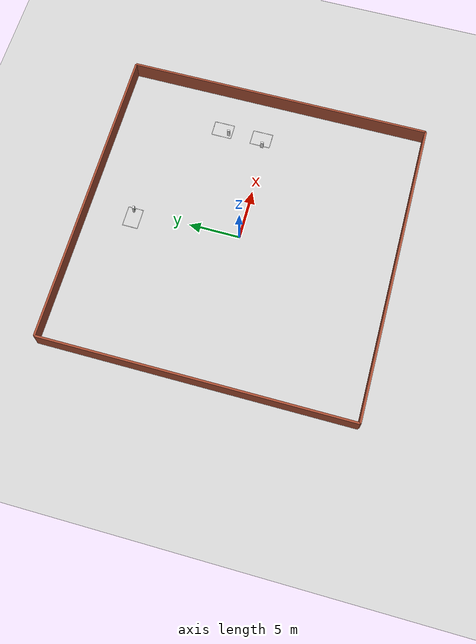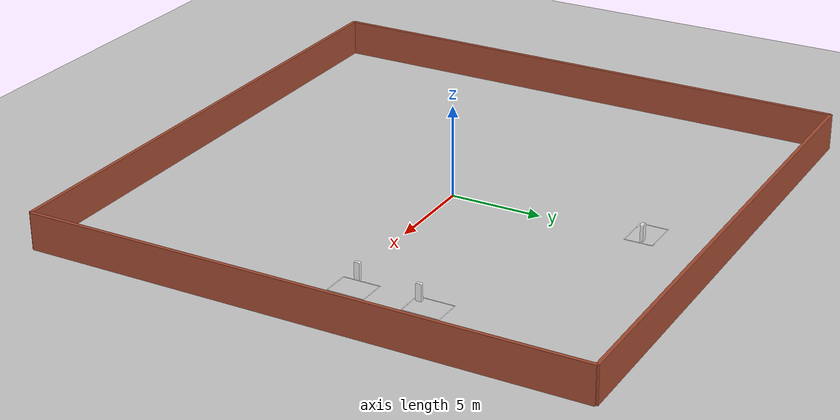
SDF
<sdf version="1.7">
 <world name="default">
  <light name="sun" type="directional">
   <pose>0 0 10 0 -0 0</pose>
   <diffuse>0.8 0.8 0.8 1</diffuse>
   <specular>0.2 0.2 0.2 1</specular>
   <attenuation>
    <range>1000</range>
    <constant>0.9</constant>
    <linear>0.01</linear>
    <quadratic>0.001</quadratic>
   </attenuation>
   <direction>-0.5 0.1 -0.9</direction>
   <spot><inner_angle>0</inner_angle><outer_angle>0</outer_angle><falloff>0</falloff></spot>
  </light>
  <model name="ground_plane">
   <static>1</static>
   <link name="link">
    <collision name="collision">
     <geometry><plane><normal>0 0 1</normal><size>100 100</size></plane></geometry>
     <surface><friction><ode><mu>100</mu><mu2>50</mu2></ode></friction></surface>
    </collision>
    <visual name="visual">
     <cast_shadows>0</cast_shadows>
     <geometry><plane><normal>0 0 1</normal><size>100 100</size></plane></geometry>
     <material>
      <script><uri>file://media/materials/scripts/gazebo.material</uri><name>Gazebo/Grey</name></script>
     </material>
    </visual>
   </link>
  </model>
  <gravity>0 0 -9.8</gravity>
  <magnetic_field>6e-06 2.3e-05 -4.2e-05</magnetic_field>
  <atmosphere type="adiabatic"/>
  <physics type="ode">
   <max_step_size>0.001</max_step_size>
   <real_time_factor>1</real_time_factor>
   <real_time_update_rate>1000</real_time_update_rate>
  </physics>
  <scene><ambient>0.4 0.4 0.4 1</ambient><background>0.7 0.7 0.7 1</background><shadows>1</shadows></scene>
  <audio><device>default</device></audio>
  <spherical_coordinates>
   <surface_model>EARTH_WGS84</surface_model>
   <latitude_deg>0</latitude_deg>
   <longitude_deg>0</longitude_deg>
   <elevation>0</elevation>
   <heading_deg>0</heading_deg>
  </spherical_coordinates>
  <model name="parking_slot_1">
   <static>1</static>
   <pose>11 0.7 0 0 -0 1.57</pose>
   <link name="lines">
    <visual name="front_line">
     <pose>1 0 0.001 0 -0 0</pose>
     <geometry><box><size>0.05 1.5 0.002</size></box></geometry>
     <material>
      <script><uri>file://media/materials/scripts/gazebo.material</uri><name>Gazebo/White</name></script>
     </material>
    </visual>
    <visual name="back_line">
     <pose>-1 0 0.001 0 -0 0</pose>
     <geometry><box><size>0.05 1.5 0.002</size></box></geometry>
     <material>
      <script><uri>file://media/materials/scripts/gazebo.material</uri><name>Gazebo/White</name></script>
     </material>
    </visual>
    <visual name="left_line">
     <pose>0 0.75 0.001 0 -0 0</pose>
     <geometry><box><size>2 0.05 0.002</size></box></geometry>
     <material>
      <script><uri>file://media/materials/scripts/gazebo.material</uri><name>Gazebo/White</name></script>
     </material>
    </visual>
    <visual name="right_line">
     <pose>0 -0.75 0.001 0 -0 0</pose>
     <geometry><box><size>2 0.05 0.002</size></box></geometry>
     <material>
      <script><uri>file://media/materials/scripts/gazebo.material</uri><name>Gazebo/White</name></script>
     </material>
    </visual>
   </link>
  </model>
  <model name="parking_slot_2">
   <static>1</static>
   <pose>11 4.7 0 0 -0 1.57</pose>
   <link name="lines">
    <visual name="front_line">
     <pose>1 0 0.001 0 -0 0</pose>
     <geometry><box><size>0.05 1.5 0.002</size></box></geometry>
     <material>
      <script><uri>file://media/materials/scripts/gazebo.material</uri><name>Gazebo/White</name></script>
     </material>
    </visual>
    <visual name="back_line">
     <pose>-1 0 0.001 0 -0 0</pose>
     <geometry><box><size>0.05 1.5 0.002</size></box></geometry>
     <material>
      <script><uri>file://media/materials/scripts/gazebo.material</uri><name>Gazebo/White</name></script>
     </material>
    </visual>
    <visual name="left_line">
     <pose>0 0.75 0.001 0 -0 0</pose>
     <geometry><box><size>2 0.05 0.002</size></box></geometry>
     <material>
      <script><uri>file://media/materials/scripts/gazebo.material</uri><name>Gazebo/White</name></script>
     </material>
    </visual>
    <visual name="right_line">
     <pose>0 -0.75 0.001 0 -0 0</pose>
     <geometry><box><size>2 0.05 0.002</size></box></geometry>
     <material>
      <script><uri>file://media/materials/scripts/gazebo.material</uri><name>Gazebo/White</name></script>
     </material>
    </visual>
   </link>
  </model>
  <model name="parking_slot_3">
   <static>1</static>
   <pose>-0.7 10.5 0 0 -0 0</pose>
   <link name="lines">
    <visual name="front_line">
     <pose>1 0 0.001 0 -0 0</pose>
     <geometry><box><size>0.05 1.5 0.002</size></box></geometry>
     <material>
      <script><uri>file://media/materials/scripts/gazebo.material</uri><name>Gazebo/White</name></script>
     </material>
    </visual>
    <visual name="back_line">
     <pose>-1 0 0.001 0 -0 0</pose>
     <geometry><box><size>0.05 1.5 0.002</size></box></geometry>
     <material>
      <script><uri>file://media/materials/scripts/gazebo.material</uri><name>Gazebo/White</name></script>
     </material>
    </visual>
    <visual name="left_line">
     <pose>0 0.75 0.001 0 -0 0</pose>
     <geometry><box><size>2 0.05 0.002</size></box></geometry>
     <material>
      <script><uri>file://media/materials/scripts/gazebo.material</uri><name>Gazebo/White</name></script>
     </material>
    </visual>
    <visual name="right_line">
     <pose>0 -0.75 0.001 0 -0 0</pose>
     <geometry><box><size>2 0.05 0.002</size></box></geometry>
     <material>
      <script><uri>file://media/materials/scripts/gazebo.material</uri><name>Gazebo/White</name></script>
     </material>
    </visual>
   </link>
  </model>
  <model name="room_walls">
   <static>1</static>
   <link name="wall_front">
    <pose>15 0 1 0 -0 0</pose>
    <collision name="collision"><geometry><box><size>0.2 30 2</size></box></geometry></collision>
    <visual name="visual">
     <geometry><box><size>0.2 30 2</size></box></geometry>
     <material>
      <script><uri>file://media/materials/scripts/gazebo.material</uri><name>Gazebo/Bricks</name></script>
     </material>
    </visual>
   </link>
   <link name="wall_back">
    <pose>-15 0 1 0 -0 0</pose>
    <collision name="collision"><geometry><box><size>0.2 30 2</size></box></geometry></collision>
    <visual name="visual">
     <geometry><box><size>0.2 30 2</size></box></geometry>
     <material>
      <script><uri>file://media/materials/scripts/gazebo.material</uri><name>Gazebo/Bricks</name></script>
     </material>
    </visual>
   </link>
   <link name="wall_left">
    <pose>0 15 1 0 -0 0</pose>
    <collision name="collision"><geometry><box><size>30 0.2 2</size></box></geometry></collision>
    <visual name="visual">
     <geometry><box><size>30 0.2 2</size></box></geometry>
     <material>
      <script><uri>file://media/materials/scripts/gazebo.material</uri><name>Gazebo/Bricks</name></script>
     </material>
    </visual>
   </link>
   <link name="wall_right">
    <pose>0 -15 1 0 -0 0</pose>
    <collision name="collision"><geometry><box><size>30 0.2 2</size></box></geometry></collision>
    <visual name="visual">
     <geometry><box><size>30 0.2 2</size></box></geometry>
     <material>
      <script><uri>file://media/materials/scripts/gazebo.material</uri><name>Gazebo/Bricks</name></script>
     </material>
    </visual>
   </link>
  </model>
  <model name="tram_sac_VF3">
   <static>1</static>
   <link name="body_link">
    <visual name="visual_tru">
     <geometry>
      <mesh><uri>model://tram_sac_VF/meshes/tru.stl</uri><scale>0.001 0.001 0.001</scale></mesh>
     </geometry>
     <material>
      <script><uri>file://media/materials/scripts/gazebo.material</uri><name>Gazebo/White</name></script>
     </material>
    </visual>
    <visual name="visual_cong_sac">
     <pose>0 0.005 0 0 -0 0</pose>
     <geometry>
      <mesh><uri>model://tram_sac_VF/meshes/cong_sac.stl</uri><scale>0.001 0.001 0.001</scale></mesh>
     </geometry>
     <material>
      <script><uri>file://media/materials/scripts/gazebo.material</uri><name>Gazebo/Black</name></script>
     </material>
    </visual>
    <visual name="visual_icon">
     <geometry>
      <mesh><uri>model://tram_sac_VF/meshes/icon.stl</uri><scale>0.001 0.001 0.001</scale></mesh>
     </geometry>
     <material>
      <script><uri>file://media/materials/scripts/gazebo.material</uri><name>Gazebo/Green</name></script>
     </material>
    </visual>
    <collision name="collision_tru">
     <pose>0 0.1 0.45 0 -0 0</pose>
     <geometry><box><size>0.32 0.15 0.92</size></box></geometry>
    </collision>
    <collision name="collision_cong_sac">
     <pose>0 0.005 0 0 -0 0</pose>
     <geometry>
      <mesh><uri>model://tram_sac_VF/meshes/tramsac.stl</uri><scale>0.001 0.001 0.001</scale></mesh>
     </geometry>
     <surface><friction><ode><mu>1</mu><mu2>1</mu2></ode></friction></surface>
    </collision>
   </link>
   <pose>0 10.5 0 0 -0 0</pose>
  </model>
  <model name="tram_sac_VF1">
   <static>1</static>
   <link name="body_link">
    <visual name="visual_tru">
     <geometry>
      <mesh><uri>model://tram_sac_VF/meshes/tru.stl</uri><scale>0.001 0.001 0.001</scale></mesh>
     </geometry>
     <material>
      <script><uri>file://media/materials/scripts/gazebo.material</uri><name>Gazebo/White</name></script>
     </material>
    </visual>
    <visual name="visual_cong_sac">
     <pose>0 0.005 0 0 -0 0</pose>
     <geometry>
      <mesh><uri>model://tram_sac_VF/meshes/cong_sac.stl</uri><scale>0.001 0.001 0.001</scale></mesh>
     </geometry>
     <material>
      <script><uri>file://media/materials/scripts/gazebo.material</uri><name>Gazebo/Black</name></script>
     </material>
    </visual>
    <visual name="visual_icon">
     <geometry>
      <mesh><uri>model://tram_sac_VF/meshes/icon.stl</uri><scale>0.001 0.001 0.001</scale></mesh>
     </geometry>
     <material>
      <script><uri>file://media/materials/scripts/gazebo.material</uri><name>Gazebo/Green</name></script>
     </material>
    </visual>
    <collision name="collision_tru">
     <pose>0 0.1 0.45 0 -0 0</pose>
     <geometry><box><size>0.32 0.15 0.92</size></box></geometry>
    </collision>
    <collision name="collision_cong_sac">
     <pose>0 0.005 0 0 -0 0</pose>
     <geometry>
      <mesh><uri>model://tram_sac_VF/meshes/tramsac.stl</uri><scale>0.001 0.001 0.001</scale></mesh>
     </geometry>
     <surface><friction><ode><mu>1</mu><mu2>1</mu2></ode></friction></surface>
    </collision>
   </link>
   <pose>10.0588 0.417226 0 0 0 -1.57</pose>
  </model>
  <model name="tram_sac_VF2">
   <static>1</static>
   <link name="body_link">
    <visual name="visual_tru">
     <geometry>
      <mesh><uri>model://tram_sac_VF/meshes/tru.stl</uri><scale>0.001 0.001 0.001</scale></mesh>
     </geometry>
     <material>
      <script><uri>file://media/materials/scripts/gazebo.material</uri><name>Gazebo/White</name></script>
     </material>
    </visual>
    <visual name="visual_cong_sac">
     <pose>0 0.005 0 0 -0 0</pose>
     <geometry>
      <mesh><uri>model://tram_sac_VF/meshes/cong_sac.stl</uri><scale>0.001 0.001 0.001</scale></mesh>
     </geometry>
     <material>
      <script><uri>file://media/materials/scripts/gazebo.material</uri><name>Gazebo/Black</name></script>
     </material>
    </visual>
    <visual name="visual_icon">
     <geometry>
      <mesh><uri>model://tram_sac_VF/meshes/icon.stl</uri><scale>0.001 0.001 0.001</scale></mesh>
     </geometry>
     <material>
      <script><uri>file://media/materials/scripts/gazebo.material</uri><name>Gazebo/Green</name></script>
     </material>
    </visual>
    <collision name="collision_tru">
     <pose>0 0.1 0.45 0 -0 0</pose>
     <geometry><box><size>0.32 0.15 0.92</size></box></geometry>
    </collision>
    <collision name="collision_cong_sac">
     <pose>0 0.005 0 0 -0 0</pose>
     <geometry>
      <mesh><uri>model://tram_sac_VF/meshes/tramsac.stl</uri><scale>0.001 0.001 0.001</scale></mesh>
     </geometry>
     <surface><friction><ode><mu>1</mu><mu2>1</mu2></ode></friction></surface>
    </collision>
   </link>
   <pose>10.5 4 0 0 0 -1.57</pose>
  </model>
 </world>
</sdf>
